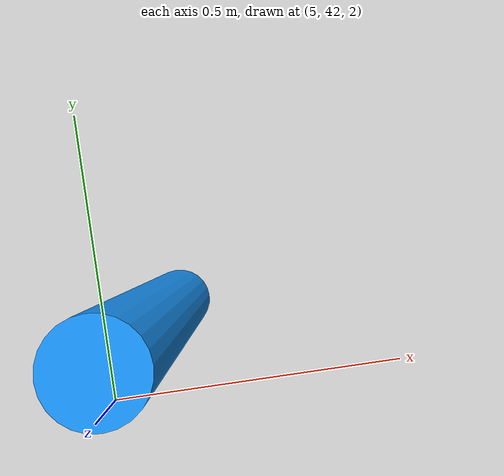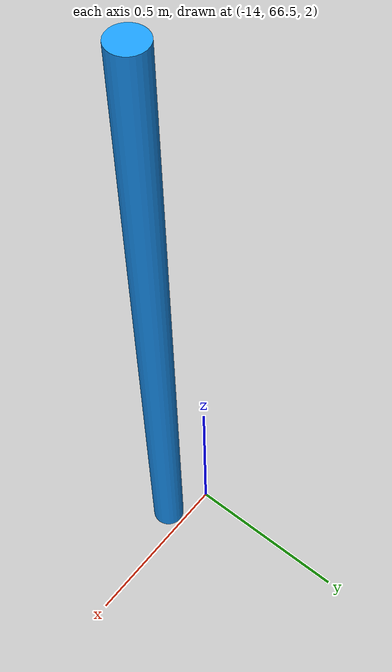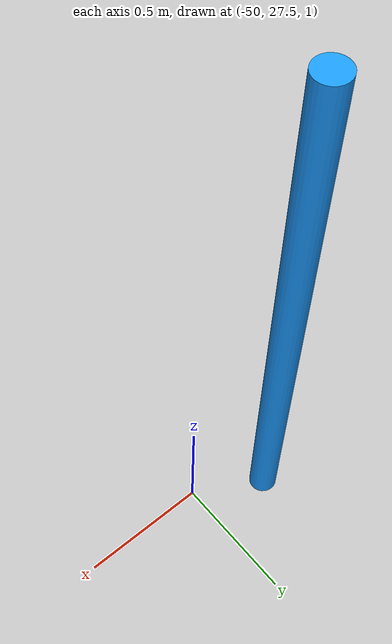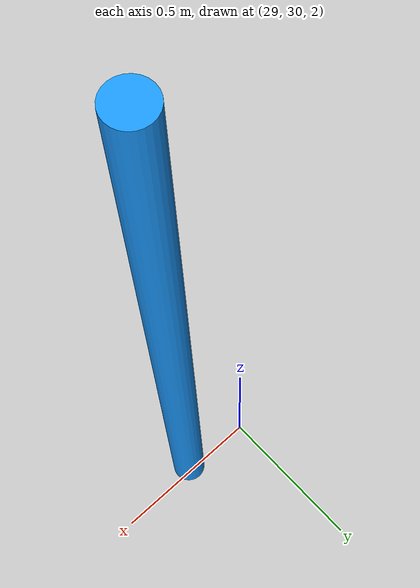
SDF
<sdf version="1.9">
 <world name="jezero_floor">
  <physics name="1ms" type="ignored">
   <max_step_size>0.001</max_step_size>
   <real_time_factor>1</real_time_factor>
  </physics>
  <gravity>0 0 -3.721</gravity>
  <plugin filename="gz-sim-physics-system" name="gz::sim::systems::Physics"/>
  <plugin filename="gz-sim-user-commands-system" name="gz::sim::systems::UserCommands"/>
  <plugin filename="gz-sim-scene-broadcaster-system" name="gz::sim::systems::SceneBroadcaster"/>
  <scene><ambient>0.5 0.4 0.35 1</ambient><background>0.85 0.65 0.50 1</background><grid>false</grid></scene>
  <light type="directional" name="sun">
   <pose>0 0 100 0 0 0</pose>
   <diffuse>0.9 0.85 0.8 1</diffuse>
   <direction>-0.5 0.3 -0.8</direction>
  </light>
  <model name="waypoint_sol13">
   <static>true</static>
   <pose>-50.18 27.7 2.2199999999999998 0 0 0</pose>
   <link name="link">
    <visual name="v">
     <geometry><cylinder><radius>0.05</radius><length>2.0</length></cylinder></geometry>
     <material><ambient>0.1 0.6 1 1</ambient><diffuse>0.1 0.6 1 1</diffuse></material>
    </visual>
   </link>
  </model>
  <model name="waypoint_sol15">
   <static>true</static>
   <pose>-41.39 57.8 2.19 0 0 0</pose>
   <link name="link">
    <visual name="v">
     <geometry><cylinder><radius>0.05</radius><length>2.0</length></cylinder></geometry>
     <material><ambient>0.1 0.6 1 1</ambient><diffuse>0.1 0.6 1 1</diffuse></material>
    </visual>
   </link>
  </model>
  <model name="waypoint_sol16">
   <static>true</static>
   <pose>-13.93 66.39 2.85 0 0 0</pose>
   <link name="link">
    <visual name="v">
     <geometry><cylinder><radius>0.05</radius><length>2.0</length></cylinder></geometry>
     <material><ambient>0.1 0.6 1 1</ambient><diffuse>0.1 0.6 1 1</diffuse></material>
    </visual>
   </link>
  </model>
  <model name="waypoint_sol32">
   <static>true</static>
   <pose>-31.75 32.01 2.3200000000000003 0 0 0</pose>
   <link name="link">
    <visual name="v">
     <geometry><cylinder><radius>0.05</radius><length>2.0</length></cylinder></geometry>
     <material><ambient>0.1 0.6 1 1</ambient><diffuse>0.1 0.6 1 1</diffuse></material>
    </visual>
   </link>
  </model>
  <model name="waypoint_sol48">
   <static>true</static>
   <pose>5.14 42.16 3.09 0 0 0</pose>
   <link name="link">
    <visual name="v">
     <geometry><cylinder><radius>0.05</radius><length>2.0</length></cylinder></geometry>
     <material><ambient>0.1 0.6 1 1</ambient><diffuse>0.1 0.6 1 1</diffuse></material>
    </visual>
   </link>
  </model>
  <model name="waypoint_sol65">
   <static>true</static>
   <pose>29.24 30.01 3.12 0 0 0</pose>
   <link name="link">
    <visual name="v">
     <geometry><cylinder><radius>0.05</radius><length>2.0</length></cylinder></geometry>
     <material><ambient>0.1 0.6 1 1</ambient><diffuse>0.1 0.6 1 1</diffuse></material>
    </visual>
   </link>
  </model>
 </world>
</sdf>
